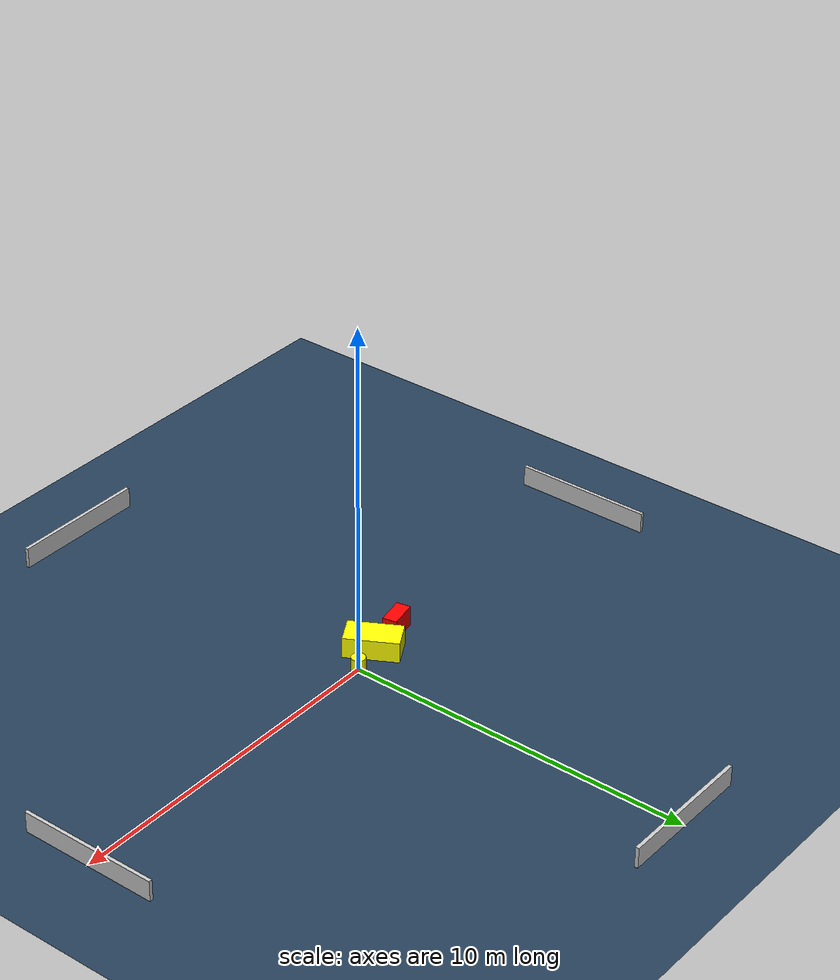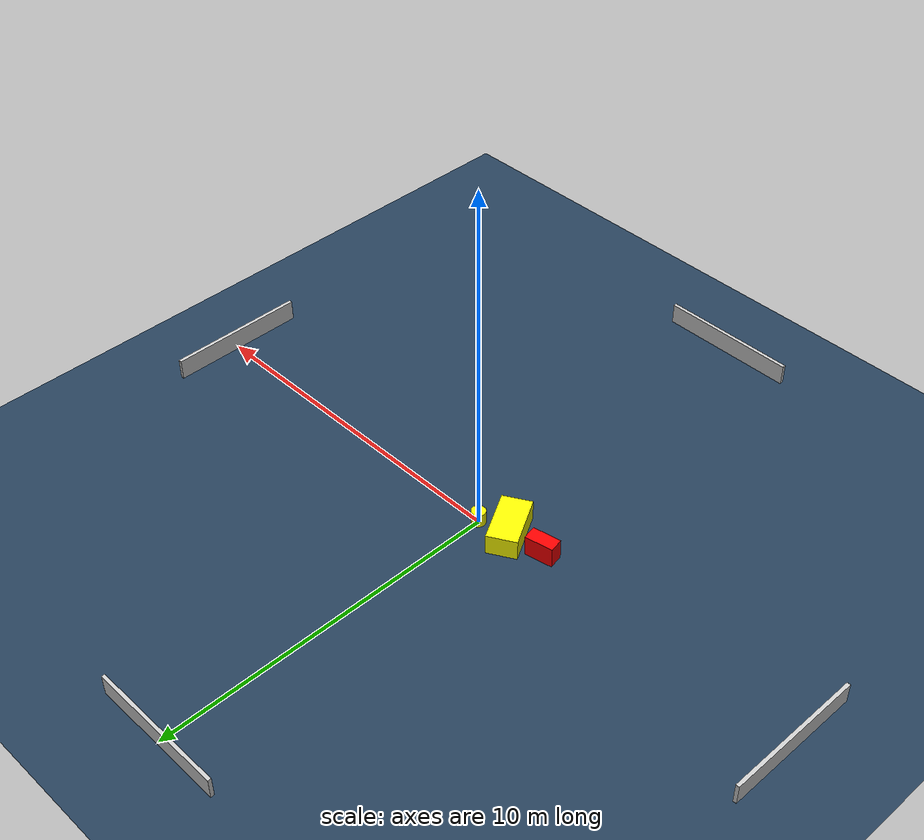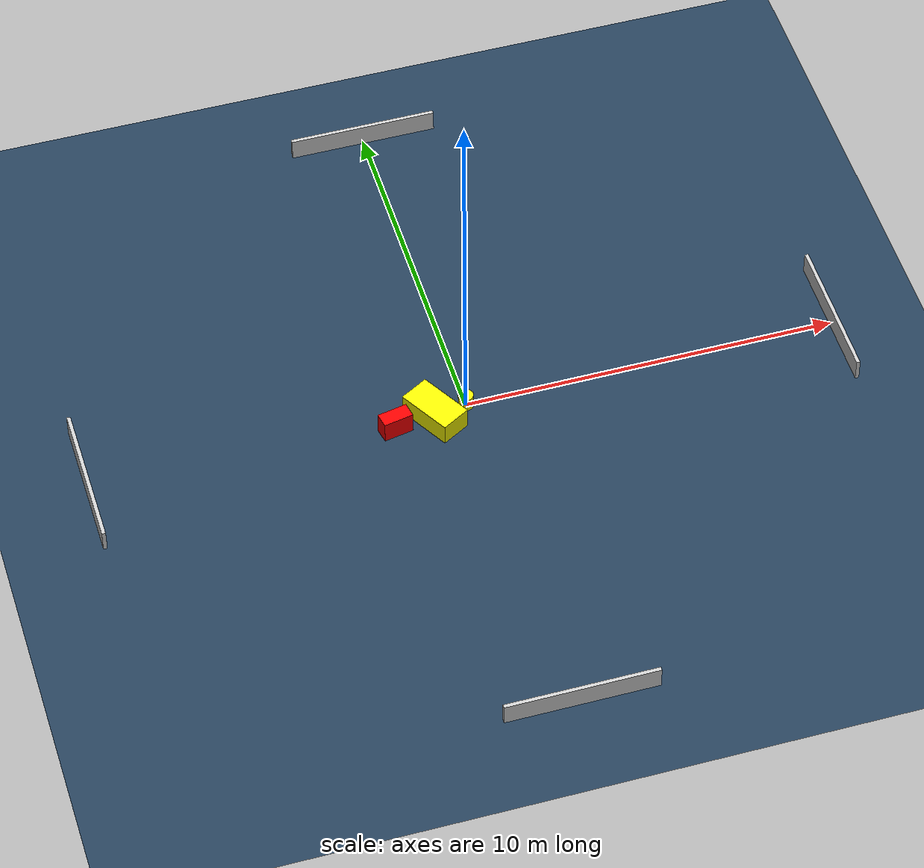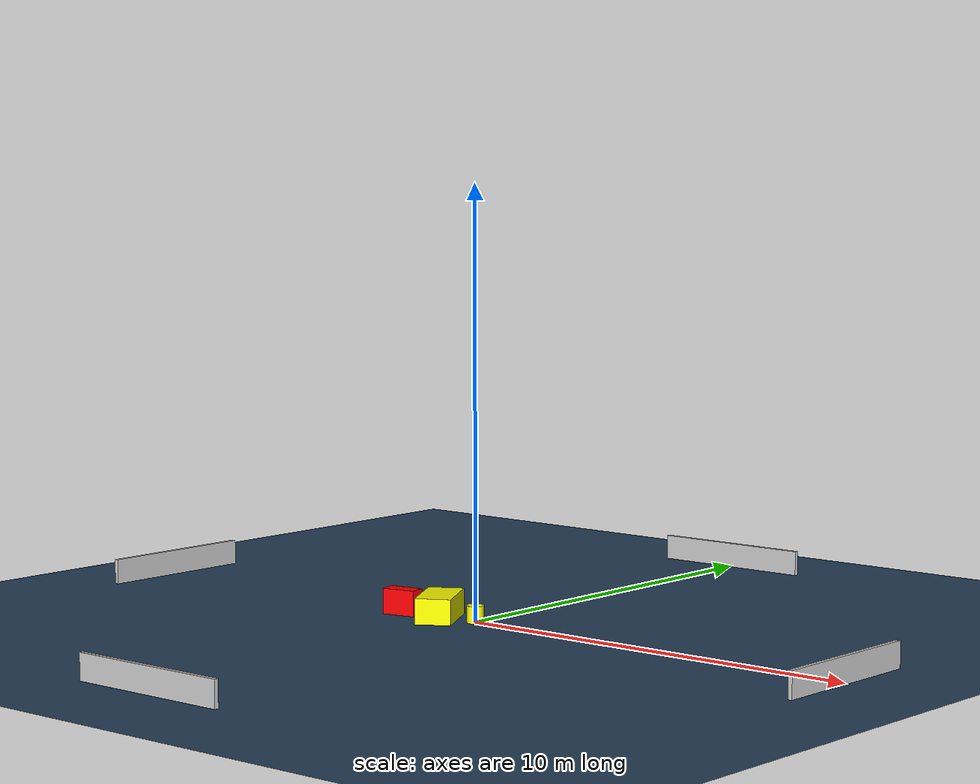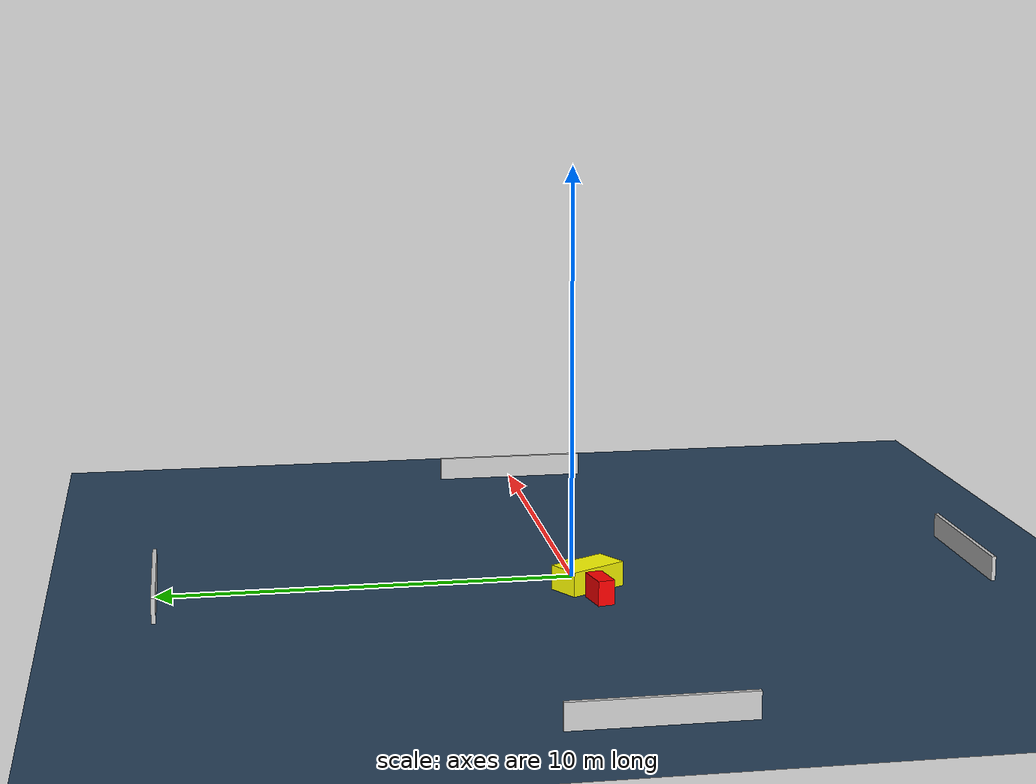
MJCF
<?xml version="1.0" ?>
<mujoco model="generated_environment">
  <option timestep="0.01" integrator="RK4" cone="elliptic"/>
  <default>
    <geom density="1"/>
  </default>
  <asset>
    <texture builtin="gradient" height="3072" name="skybox" rgb1="0.3 0.5 0.7" rgb2="0 0 0" type="skybox" width="512"/>
    <texture builtin="checker" height="300" name="groundplane" rgb1="0.2 0.3 0.4" rgb2="0.1 0.2 0.3" type="2d" width="300"/>
    <material name="groundplane" reflectance="0.2" texrepeat="5 5" texture="groundplane"/>
  </asset>
  <worldbody>
    <light dir="0 0 -1" directional="true" pos="0 0 1.5"/>
    <geom condim="3" friction="0.5 0.005 0.001" material="groundplane" name="floor" pos="0 0 0" size="0 0 0.05" type="plane"/>
    <body name="walls">
      <geom name="wall_1" condim="4" pos="-10.0 0.0 0.3" rgba="0.800000011920929 0.800000011920929 0.800000011920929 1.0" size="0.05 2.0 0.3" type="box"/>
      <geom name="wall_2" condim="4" pos="10.0 0.0 0.3" rgba="0.800000011920929 0.800000011920929 0.800000011920929 1.0" size="0.05 2.0 0.3" type="box"/>
      <geom name="wall_3" condim="4" pos="0.0 -10.0 0.3" rgba="0.800000011920929 0.800000011920929 0.800000011920929 1.0" size="2.0 0.05 0.3" type="box"/>
      <geom name="wall_4" condim="4" pos="0.0 10.0 0.3" rgba="0.800000011920929 0.800000011920929 0.800000011920929 1.0" size="2.0 0.05 0.3" type="box"/>
    </body>
    <body name="robot">
      <joint name="joint_x" type="slide" pos="0 0 0" axis="1 0 0"/>
      <joint name="joint_y" type="slide" pos="0 0 0" axis="0 1 0"/>
      <geom name="robot" type="cylinder" pos="0.0 0.0 0.2" size="0.2 0.2 0.0" mass="5.0" friction="1.0 0.005 0.0001" condim="4" rgba="1.0 1.0 0.0 1.0"/>
    </body>
    <body name="obstacle_1_movable">
      <geom name="obstacle_1_movable" condim="4" pos="-0.891083483446497 -0.22240748809471952 0.3" euler="0 0 299.62168079196834" friction="0.0 0.005 0.001" rgba="1.0 1.0 0.0 1.0" size="0.7618343437207247 0.4196735178998595 0.3" type="box" mass="0.1"/>
      <joint type="free"/>
    </body>
    <body name="obstacle_2_static">
      <geom name="obstacle_2_static" condim="4" pos="-1.9715466661284977 -0.3120941502820585 0.3" euler="0 0 101.15722517498985" friction="0.0 0.005 0.001" rgba="1.0 0.0 0.0 1.0" size="0.20222549066059542 0.4051448099283156 0.3" type="box"/>
    </body>
  </worldbody>
  <actuator>
    <motor name="actuator_x" joint="joint_x" gear="1" ctrlrange="-1 1"/>
    <motor name="actuator_y" joint="joint_y" gear="1" ctrlrange="-1 1"/>
  </actuator>
</mujoco>
